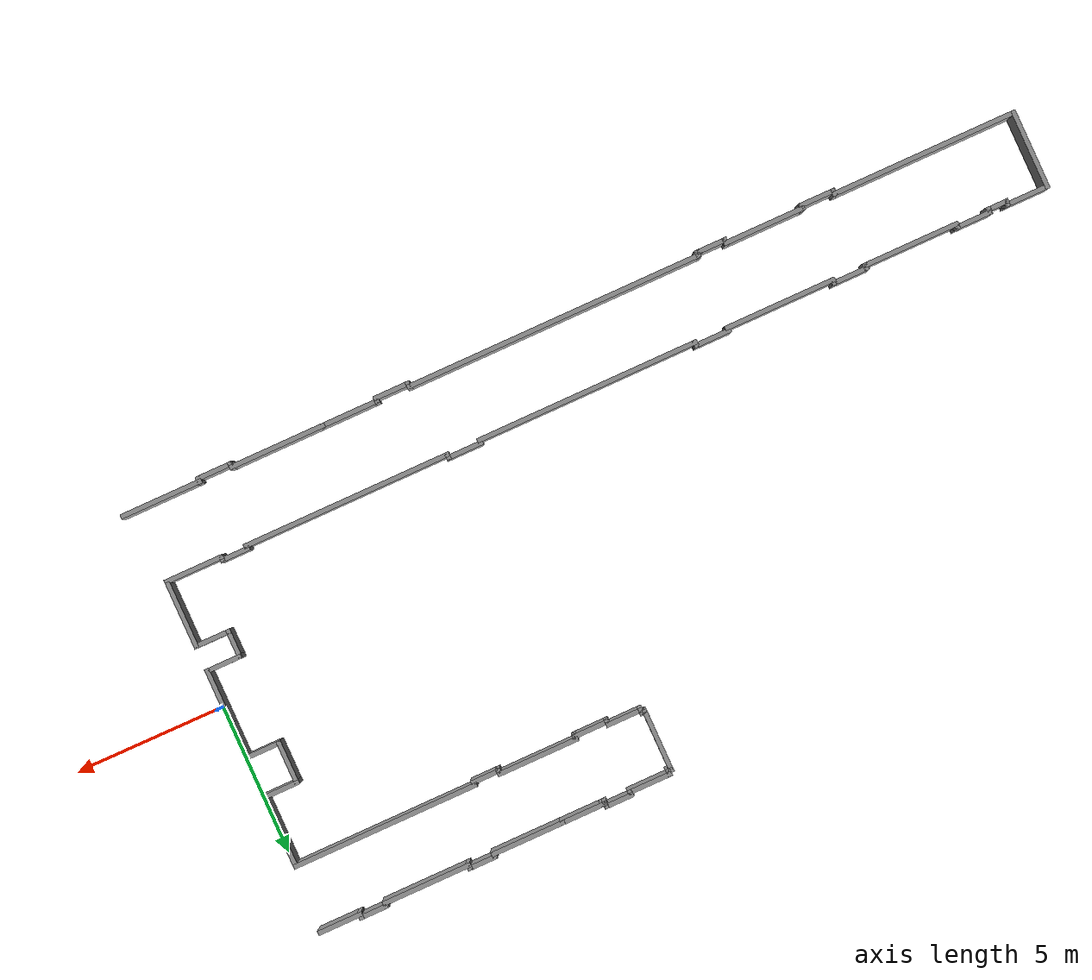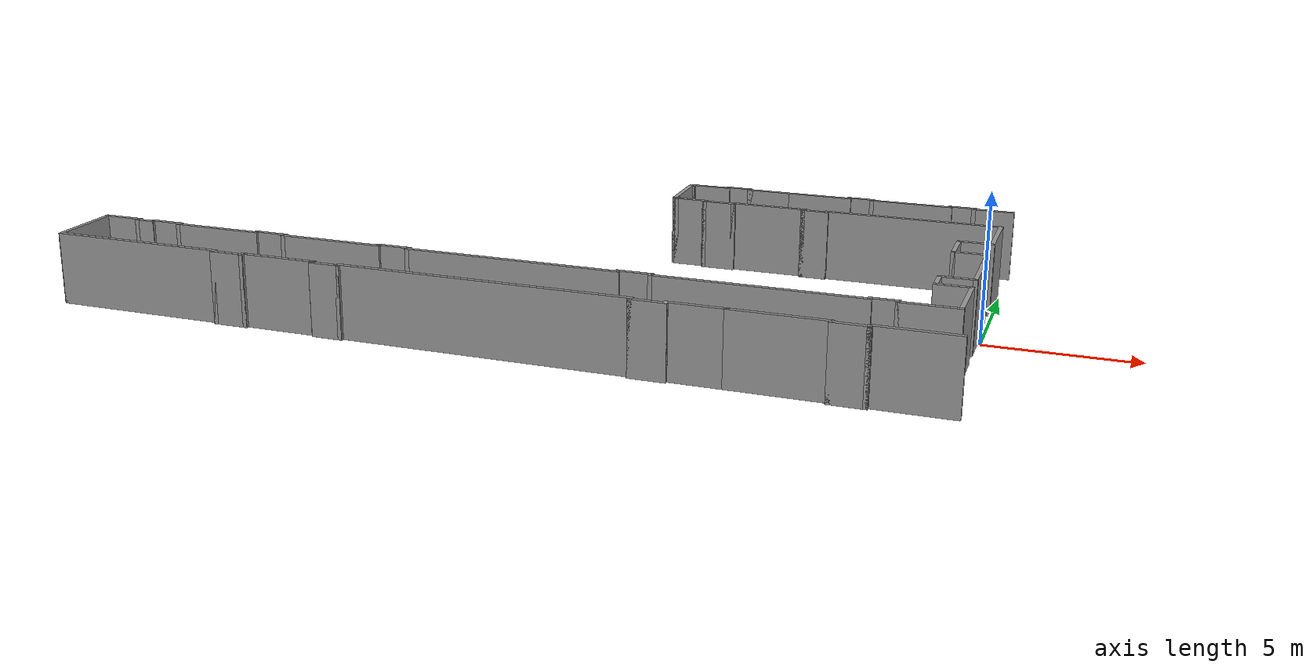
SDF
<sdf version="1.6">
 <model name="hallway">
  <pose>-0.039388 0.458321 0 0 -0 0</pose>
  <link name="Wall_10">
   <collision name="Wall_10_Collision">
    <geometry><box><size>0.25 0.15 2.5</size></box></geometry>
    <pose>0 0 1.25 0 -0 0</pose>
   </collision>
   <visual name="Wall_10_Visual">
    <pose>0 0 1.25 0 -0 0</pose>
    <geometry><box><size>0.25 0.15 2.5</size></box></geometry>
    <material>
     <script><uri>file://media/materials/scripts/gazebo.material</uri><name>Gazebo/Grey</name></script>
     <ambient>1 1 1 1</ambient>
    </material>
   </visual>
   <pose>-20.275 -7.2 0 0 0 -1.5708</pose>
  </link>
  <link name="Wall_100">
   <collision name="Wall_100_Collision">
    <geometry><box><size>3 0.15 2.5</size></box></geometry>
    <pose>0 0 1.25 0 -0 0</pose>
   </collision>
   <visual name="Wall_100_Visual">
    <pose>0 0 1.25 0 -0 0</pose>
    <geometry><box><size>3 0.15 2.5</size></box></geometry>
    <material>
     <script><uri>file://media/materials/scripts/gazebo.material</uri><name>Gazebo/Grey</name></script>
     <ambient>1 1 1 1</ambient>
    </material>
   </visual>
   <pose>-3.6 7.15 0 0 -0 3.14159</pose>
  </link>
  <link name="Wall_101">
   <collision name="Wall_101_Collision">
    <geometry><box><size>0.25 0.15 2.5</size></box></geometry>
    <pose>0 0 1.25 0 -0 0</pose>
   </collision>
   <visual name="Wall_101_Visual">
    <pose>0 0 1.25 0 -0 0</pose>
    <geometry><box><size>0.25 0.15 2.5</size></box></geometry>
    <material>
     <script><uri>file://media/materials/scripts/gazebo.material</uri><name>Gazebo/Grey</name></script>
     <ambient>1 1 1 1</ambient>
    </material>
   </visual>
   <pose>-5.025 7.2 0 0 -0 1.5708</pose>
  </link>
  <link name="Wall_102">
   <collision name="Wall_102_Collision">
    <geometry><box><size>1 0.15 2.5</size></box></geometry>
    <pose>0 0 1.25 0 -0 0</pose>
   </collision>
   <visual name="Wall_102_Visual">
    <pose>0 0 1.25 0 -0 0</pose>
    <geometry><box><size>1 0.15 2.5</size></box></geometry>
    <material>
     <script><uri>file://media/materials/scripts/gazebo.material</uri><name>Gazebo/Grey</name></script>
     <ambient>1 1 1 1</ambient>
    </material>
   </visual>
   <pose>-5.45 7.25 0 0 -0 3.14159</pose>
  </link>
  <link name="Wall_103">
   <collision name="Wall_103_Collision">
    <geometry><box><size>0.25 0.15 2.5</size></box></geometry>
    <pose>0 0 1.25 0 -0 0</pose>
   </collision>
   <visual name="Wall_103_Visual">
    <pose>0 0 1.25 0 -0 0</pose>
    <geometry><box><size>0.25 0.15 2.5</size></box></geometry>
    <material>
     <script><uri>file://media/materials/scripts/gazebo.material</uri><name>Gazebo/Grey</name></script>
     <ambient>1 1 1 1</ambient>
    </material>
   </visual>
   <pose>-5.875 7.2 0 0 0 -1.5708</pose>
  </link>
  <link name="Wall_104">
   <collision name="Wall_104_Collision">
    <geometry><box><size>2.5 0.15 2.5</size></box></geometry>
    <pose>0 0 1.25 0 -0 0</pose>
   </collision>
   <visual name="Wall_104_Visual">
    <pose>0 0 1.25 0 -0 0</pose>
    <geometry><box><size>2.5 0.15 2.5</size></box></geometry>
    <material>
     <script><uri>file://media/materials/scripts/gazebo.material</uri><name>Gazebo/Grey</name></script>
     <ambient>1 1 1 1</ambient>
    </material>
   </visual>
   <pose>-7.05 7.15 0 0 -0 3.14159</pose>
  </link>
  <link name="Wall_106">
   <collision name="Wall_106_Collision">
    <geometry><box><size>1.5 0.15 2.5</size></box></geometry>
    <pose>0 0 1.25 0 -0 0</pose>
   </collision>
   <visual name="Wall_106_Visual">
    <pose>0 0 1.25 0 -0 0</pose>
    <geometry><box><size>1.5 0.15 2.5</size></box></geometry>
    <material>
     <script><uri>file://media/materials/scripts/gazebo.material</uri><name>Gazebo/Grey</name></script>
     <ambient>1 1 1 1</ambient>
    </material>
   </visual>
   <pose>-8.9 7.15 0 0 -0 3.14159</pose>
  </link>
  <link name="Wall_107">
   <collision name="Wall_107_Collision">
    <geometry><box><size>0.25 0.15 2.5</size></box></geometry>
    <pose>0 0 1.25 0 -0 0</pose>
   </collision>
   <visual name="Wall_107_Visual">
    <pose>0 0 1.25 0 -0 0</pose>
    <geometry><box><size>0.25 0.15 2.5</size></box></geometry>
    <material>
     <script><uri>file://media/materials/scripts/gazebo.material</uri><name>Gazebo/Grey</name></script>
     <ambient>1 1 1 1</ambient>
    </material>
   </visual>
   <pose>-9.625 7.15 0 0 -0 3.14159</pose>
  </link>
  <link name="Wall_108">
   <collision name="Wall_108_Collision">
    <geometry><box><size>0.25 0.15 2.5</size></box></geometry>
    <pose>0 0 1.25 0 -0 0</pose>
   </collision>
   <visual name="Wall_108_Visual">
    <pose>0 0 1.25 0 -0 0</pose>
    <geometry><box><size>0.25 0.15 2.5</size></box></geometry>
    <material>
     <script><uri>file://media/materials/scripts/gazebo.material</uri><name>Gazebo/Grey</name></script>
     <ambient>1 1 1 1</ambient>
    </material>
   </visual>
   <pose>-9.675 7.2 0 0 -0 1.5708</pose>
  </link>
  <link name="Wall_109">
   <collision name="Wall_109_Collision">
    <geometry><box><size>1 0.15 2.5</size></box></geometry>
    <pose>0 0 1.25 0 -0 0</pose>
   </collision>
   <visual name="Wall_109_Visual">
    <pose>0 0 1.25 0 -0 0</pose>
    <geometry><box><size>1 0.15 2.5</size></box></geometry>
    <material>
     <script><uri>file://media/materials/scripts/gazebo.material</uri><name>Gazebo/Grey</name></script>
     <ambient>1 1 1 1</ambient>
    </material>
   </visual>
   <pose>-10.1 7.25 0 0 -0 3.14159</pose>
  </link>
  <link name="Wall_11">
   <collision name="Wall_11_Collision">
    <geometry><box><size>1 0.15 2.5</size></box></geometry>
    <pose>0 0 1.25 0 -0 0</pose>
   </collision>
   <visual name="Wall_11_Visual">
    <pose>0 0 1.25 0 -0 0</pose>
    <geometry><box><size>1 0.15 2.5</size></box></geometry>
    <material>
     <script><uri>file://media/materials/scripts/gazebo.material</uri><name>Gazebo/Grey</name></script>
     <ambient>1 1 1 1</ambient>
    </material>
   </visual>
   <pose>-19.85 -7.25 0 0 -0 0</pose>
  </link>
  <link name="Wall_110">
   <collision name="Wall_110_Collision">
    <geometry><box><size>0.25 0.15 2.5</size></box></geometry>
    <pose>0 0 1.25 0 -0 0</pose>
   </collision>
   <visual name="Wall_110_Visual">
    <pose>0 0 1.25 0 -0 0</pose>
    <geometry><box><size>0.25 0.15 2.5</size></box></geometry>
    <material>
     <script><uri>file://media/materials/scripts/gazebo.material</uri><name>Gazebo/Grey</name></script>
     <ambient>1 1 1 1</ambient>
    </material>
   </visual>
   <pose>-10.525 7.2 0 0 0 -1.5708</pose>
  </link>
  <link name="Wall_111">
   <collision name="Wall_111_Collision">
    <geometry><box><size>1.5 0.15 2.5</size></box></geometry>
    <pose>0 0 1.25 0 -0 0</pose>
   </collision>
   <visual name="Wall_111_Visual">
    <pose>0 0 1.25 0 -0 0</pose>
    <geometry><box><size>1.5 0.15 2.5</size></box></geometry>
    <material>
     <script><uri>file://media/materials/scripts/gazebo.material</uri><name>Gazebo/Grey</name></script>
     <ambient>1 1 1 1</ambient>
    </material>
   </visual>
   <pose>-11.2 7.15 0 0 -0 3.14159</pose>
  </link>
  <link name="Wall_112">
   <collision name="Wall_112_Collision">
    <geometry><box><size>0.25 0.15 2.5</size></box></geometry>
    <pose>0 0 1.25 0 -0 0</pose>
   </collision>
   <visual name="Wall_112_Visual">
    <pose>0 0 1.25 0 -0 0</pose>
    <geometry><box><size>0.25 0.15 2.5</size></box></geometry>
    <material>
     <script><uri>file://media/materials/scripts/gazebo.material</uri><name>Gazebo/Grey</name></script>
     <ambient>1 1 1 1</ambient>
    </material>
   </visual>
   <pose>-11.875 7.1 0 0 0 -1.5708</pose>
  </link>
  <link name="Wall_113">
   <collision name="Wall_113_Collision">
    <geometry><box><size>0.25 0.15 2.5</size></box></geometry>
    <pose>0 0 1.25 0 -0 0</pose>
   </collision>
   <visual name="Wall_113_Visual">
    <pose>0 0 1.25 0 -0 0</pose>
    <geometry><box><size>0.25 0.15 2.5</size></box></geometry>
    <material>
     <script><uri>file://media/materials/scripts/gazebo.material</uri><name>Gazebo/Grey</name></script>
     <ambient>1 1 1 1</ambient>
    </material>
   </visual>
   <pose>-11.925 7.05 0 0 -0 3.14159</pose>
  </link>
  <link name="Wall_114">
   <collision name="Wall_114_Collision">
    <geometry><box><size>2.03478 0.15 2.5</size></box></geometry>
    <pose>0 0 1.25 0 -0 0</pose>
   </collision>
   <visual name="Wall_114_Visual">
    <pose>0 0 1.25 0 -0 0</pose>
    <geometry><box><size>2.03478 0.15 2.5</size></box></geometry>
    <material>
     <script><uri>file://media/materials/scripts/gazebo.material</uri><name>Gazebo/Grey</name></script>
     <ambient>1 1 1 1</ambient>
    </material>
   </visual>
   <pose>-11.975 6.10761 0 0 0 -1.5708</pose>
  </link>
  <link name="Wall_115">
   <collision name="Wall_115_Collision">
    <geometry><box><size>0.15 0.15 2.5</size></box></geometry>
    <pose>0 0 1.25 0 -0 0</pose>
   </collision>
   <visual name="Wall_115_Visual">
    <pose>0 0 1.25 0 -0 0</pose>
    <geometry><box><size>0.15 0.15 2.5</size></box></geometry>
    <material>
     <script><uri>file://media/materials/scripts/gazebo.material</uri><name>Gazebo/Grey</name></script>
     <ambient>1 1 1 1</ambient>
    </material>
   </visual>
   <pose>-11.975 5.16522 0 0 -0 0</pose>
  </link>
  <link name="Wall_12">
   <collision name="Wall_12_Collision">
    <geometry><box><size>0.25 0.15 2.5</size></box></geometry>
    <pose>0 0 1.25 0 -0 0</pose>
   </collision>
   <visual name="Wall_12_Visual">
    <pose>0 0 1.25 0 -0 0</pose>
    <geometry><box><size>0.25 0.15 2.5</size></box></geometry>
    <material>
     <script><uri>file://media/materials/scripts/gazebo.material</uri><name>Gazebo/Grey</name></script>
     <ambient>1 1 1 1</ambient>
    </material>
   </visual>
   <pose>-19.375 -7.25 0 0 -0 0</pose>
  </link>
  <link name="Wall_128">
   <collision name="Wall_128_Collision">
    <geometry><box><size>0.25 0.15 2.5</size></box></geometry>
    <pose>0 0 1.25 0 -0 0</pose>
   </collision>
   <visual name="Wall_128_Visual">
    <pose>0 0 1.25 0 -0 0</pose>
    <geometry><box><size>0.25 0.15 2.5</size></box></geometry>
    <material>
     <script><uri>file://media/materials/scripts/gazebo.material</uri><name>Gazebo/Grey</name></script>
     <ambient>1 1 1 1</ambient>
    </material>
   </visual>
   <pose>-11.975 5.11522 0 0 0 -1.5708</pose>
  </link>
  <link name="Wall_129">
   <collision name="Wall_129_Collision">
    <geometry><box><size>0.25 0.15 2.5</size></box></geometry>
    <pose>0 0 1.25 0 -0 0</pose>
   </collision>
   <visual name="Wall_129_Visual">
    <pose>0 0 1.25 0 -0 0</pose>
    <geometry><box><size>0.25 0.15 2.5</size></box></geometry>
    <material>
     <script><uri>file://media/materials/scripts/gazebo.material</uri><name>Gazebo/Grey</name></script>
     <ambient>1 1 1 1</ambient>
    </material>
   </visual>
   <pose>-11.925 5.06522 0 0 -0 0</pose>
  </link>
  <link name="Wall_13">
   <collision name="Wall_13_Collision">
    <geometry><box><size>0.25 0.15 2.5</size></box></geometry>
    <pose>0 0 1.25 0 -0 0</pose>
   </collision>
   <visual name="Wall_13_Visual">
    <pose>0 0 1.25 0 -0 0</pose>
    <geometry><box><size>0.25 0.15 2.5</size></box></geometry>
    <material>
     <script><uri>file://media/materials/scripts/gazebo.material</uri><name>Gazebo/Grey</name></script>
     <ambient>1 1 1 1</ambient>
    </material>
   </visual>
   <pose>-19.325 -7.2 0 0 -0 1.5708</pose>
  </link>
  <link name="Wall_130">
   <collision name="Wall_130_Collision">
    <geometry><box><size>0.25 0.15 2.5</size></box></geometry>
    <pose>0 0 1.25 0 -0 0</pose>
   </collision>
   <visual name="Wall_130_Visual">
    <pose>0 0 1.25 0 -0 0</pose>
    <geometry><box><size>0.25 0.15 2.5</size></box></geometry>
    <material>
     <script><uri>file://media/materials/scripts/gazebo.material</uri><name>Gazebo/Grey</name></script>
     <ambient>1 1 1 1</ambient>
    </material>
   </visual>
   <pose>-11.875 5.01522 0 0 0 -1.5708</pose>
  </link>
  <link name="Wall_131">
   <collision name="Wall_131_Collision">
    <geometry><box><size>1.25 0.15 2.5</size></box></geometry>
    <pose>0 0 1.25 0 -0 0</pose>
   </collision>
   <visual name="Wall_131_Visual">
    <pose>0 0 1.25 0 -0 0</pose>
    <geometry><box><size>1.25 0.15 2.5</size></box></geometry>
    <material>
     <script><uri>file://media/materials/scripts/gazebo.material</uri><name>Gazebo/Grey</name></script>
     <ambient>1 1 1 1</ambient>
    </material>
   </visual>
   <pose>-11.325 4.96522 0 0 -0 0</pose>
  </link>
  <link name="Wall_132">
   <collision name="Wall_132_Collision">
    <geometry><box><size>0.25 0.15 2.5</size></box></geometry>
    <pose>0 0 1.25 0 -0 0</pose>
   </collision>
   <visual name="Wall_132_Visual">
    <pose>0 0 1.25 0 -0 0</pose>
    <geometry><box><size>0.25 0.15 2.5</size></box></geometry>
    <material>
     <script><uri>file://media/materials/scripts/gazebo.material</uri><name>Gazebo/Grey</name></script>
     <ambient>1 1 1 1</ambient>
    </material>
   </visual>
   <pose>-10.775 4.91522 0 0 0 -1.5708</pose>
  </link>
  <link name="Wall_133">
   <collision name="Wall_133_Collision">
    <geometry><box><size>1.25 0.15 2.5</size></box></geometry>
    <pose>0 0 1.25 0 -0 0</pose>
   </collision>
   <visual name="Wall_133_Visual">
    <pose>0 0 1.25 0 -0 0</pose>
    <geometry><box><size>1.25 0.15 2.5</size></box></geometry>
    <material>
     <script><uri>file://media/materials/scripts/gazebo.material</uri><name>Gazebo/Grey</name></script>
     <ambient>1 1 1 1</ambient>
    </material>
   </visual>
   <pose>-10.225 4.86522 0 0 -0 0</pose>
  </link>
  <link name="Wall_134">
   <collision name="Wall_134_Collision">
    <geometry><box><size>0.25 0.15 2.5</size></box></geometry>
    <pose>0 0 1.25 0 -0 0</pose>
   </collision>
   <visual name="Wall_134_Visual">
    <pose>0 0 1.25 0 -0 0</pose>
    <geometry><box><size>0.25 0.15 2.5</size></box></geometry>
    <material>
     <script><uri>file://media/materials/scripts/gazebo.material</uri><name>Gazebo/Grey</name></script>
     <ambient>1 1 1 1</ambient>
    </material>
   </visual>
   <pose>-9.675 4.91522 0 0 -0 1.5708</pose>
  </link>
  <link name="Wall_135">
   <collision name="Wall_135_Collision">
    <geometry><box><size>2.75 0.15 2.5</size></box></geometry>
    <pose>0 0 1.25 0 -0 0</pose>
   </collision>
   <visual name="Wall_135_Visual">
    <pose>0 0 1.25 0 -0 0</pose>
    <geometry><box><size>2.75 0.15 2.5</size></box></geometry>
    <material>
     <script><uri>file://media/materials/scripts/gazebo.material</uri><name>Gazebo/Grey</name></script>
     <ambient>1 1 1 1</ambient>
    </material>
   </visual>
   <pose>-8.375 4.96522 0 0 -0 0</pose>
  </link>
  <link name="Wall_136">
   <collision name="Wall_136_Collision">
    <geometry><box><size>0.25 0.15 2.5</size></box></geometry>
    <pose>0 0 1.25 0 -0 0</pose>
   </collision>
   <visual name="Wall_136_Visual">
    <pose>0 0 1.25 0 -0 0</pose>
    <geometry><box><size>0.25 0.15 2.5</size></box></geometry>
    <material>
     <script><uri>file://media/materials/scripts/gazebo.material</uri><name>Gazebo/Grey</name></script>
     <ambient>1 1 1 1</ambient>
    </material>
   </visual>
   <pose>-7.075 4.91522 0 0 0 -1.5708</pose>
  </link>
  <link name="Wall_137">
   <collision name="Wall_137_Collision">
    <geometry><box><size>1 0.15 2.5</size></box></geometry>
    <pose>0 0 1.25 0 -0 0</pose>
   </collision>
   <visual name="Wall_137_Visual">
    <pose>0 0 1.25 0 -0 0</pose>
    <geometry><box><size>1 0.15 2.5</size></box></geometry>
    <material>
     <script><uri>file://media/materials/scripts/gazebo.material</uri><name>Gazebo/Grey</name></script>
     <ambient>1 1 1 1</ambient>
    </material>
   </visual>
   <pose>-6.65 4.86522 0 0 -0 0</pose>
  </link>
  <link name="Wall_138">
   <collision name="Wall_138_Collision">
    <geometry><box><size>0.25 0.15 2.5</size></box></geometry>
    <pose>0 0 1.25 0 -0 0</pose>
   </collision>
   <visual name="Wall_138_Visual">
    <pose>0 0 1.25 0 -0 0</pose>
    <geometry><box><size>0.25 0.15 2.5</size></box></geometry>
    <material>
     <script><uri>file://media/materials/scripts/gazebo.material</uri><name>Gazebo/Grey</name></script>
     <ambient>1 1 1 1</ambient>
    </material>
   </visual>
   <pose>-6.225 4.91522 0 0 -0 1.5708</pose>
  </link>
  <link name="Wall_139">
   <collision name="Wall_139_Collision">
    <geometry><box><size>6.25 0.15 2.5</size></box></geometry>
    <pose>0 0 1.25 0 -0 0</pose>
   </collision>
   <visual name="Wall_139_Visual">
    <pose>0 0 1.25 0 -0 0</pose>
    <geometry><box><size>6.25 0.15 2.5</size></box></geometry>
    <material>
     <script><uri>file://media/materials/scripts/gazebo.material</uri><name>Gazebo/Grey</name></script>
     <ambient>1 1 1 1</ambient>
    </material>
   </visual>
   <pose>-3.175 4.96522 0 0 -0 0</pose>
  </link>
  <link name="Wall_14">
   <collision name="Wall_14_Collision">
    <geometry><box><size>10 0.15 2.5</size></box></geometry>
    <pose>0 0 1.25 0 -0 0</pose>
   </collision>
   <visual name="Wall_14_Visual">
    <pose>0 0 1.25 0 -0 0</pose>
    <geometry><box><size>10 0.15 2.5</size></box></geometry>
    <material>
     <script><uri>file://media/materials/scripts/gazebo.material</uri><name>Gazebo/Grey</name></script>
     <ambient>1 1 1 1</ambient>
    </material>
   </visual>
   <pose>-14.4 -7.15 0 0 -0 0</pose>
  </link>
  <link name="Wall_140">
   <collision name="Wall_140_Collision">
    <geometry><box><size>2.5 0.15 2.5</size></box></geometry>
    <pose>0 0 1.25 0 -0 0</pose>
   </collision>
   <visual name="Wall_140_Visual">
    <pose>0 0 1.25 0 -0 0</pose>
    <geometry><box><size>2.5 0.15 2.5</size></box></geometry>
    <material>
     <script><uri>file://media/materials/scripts/gazebo.material</uri><name>Gazebo/Grey</name></script>
     <ambient>1 1 1 1</ambient>
    </material>
   </visual>
   <pose>-0.125 3.79022 0 0 0 -1.5708</pose>
  </link>
  <link name="Wall_141">
   <collision name="Wall_141_Collision">
    <geometry><box><size>1.25 0.15 2.5</size></box></geometry>
    <pose>0 0 1.25 0 -0 0</pose>
   </collision>
   <visual name="Wall_141_Visual">
    <pose>0 0 1.25 0 -0 0</pose>
    <geometry><box><size>1.25 0.15 2.5</size></box></geometry>
    <material>
     <script><uri>file://media/materials/scripts/gazebo.material</uri><name>Gazebo/Grey</name></script>
     <ambient>1 1 1 1</ambient>
    </material>
   </visual>
   <pose>-0.675 2.61522 0 0 -0 3.14159</pose>
  </link>
  <link name="Wall_142">
   <collision name="Wall_142_Collision">
    <geometry><box><size>1.5 0.15 2.5</size></box></geometry>
    <pose>0 0 1.25 0 -0 0</pose>
   </collision>
   <visual name="Wall_142_Visual">
    <pose>0 0 1.25 0 -0 0</pose>
    <geometry><box><size>1.5 0.15 2.5</size></box></geometry>
    <material>
     <script><uri>file://media/materials/scripts/gazebo.material</uri><name>Gazebo/Grey</name></script>
     <ambient>1 1 1 1</ambient>
    </material>
   </visual>
   <pose>-1.225 1.94022 0 0 0 -1.5708</pose>
  </link>
  <link name="Wall_143">
   <collision name="Wall_143_Collision">
    <geometry><box><size>1.25 0.15 2.5</size></box></geometry>
    <pose>0 0 1.25 0 -0 0</pose>
   </collision>
   <visual name="Wall_143_Visual">
    <pose>0 0 1.25 0 -0 0</pose>
    <geometry><box><size>1.25 0.15 2.5</size></box></geometry>
    <material>
     <script><uri>file://media/materials/scripts/gazebo.material</uri><name>Gazebo/Grey</name></script>
     <ambient>1 1 1 1</ambient>
    </material>
   </visual>
   <pose>-0.675 1.26522 0 0 -0 0</pose>
  </link>
  <link name="Wall_144">
   <collision name="Wall_144_Collision">
    <geometry><box><size>1.25 0.15 2.5</size></box></geometry>
    <pose>0 0 1.25 0 -0 0</pose>
   </collision>
   <visual name="Wall_144_Visual">
    <pose>0 0 1.25 0 -0 0</pose>
    <geometry><box><size>1.25 0.15 2.5</size></box></geometry>
    <material>
     <script><uri>file://media/materials/scripts/gazebo.material</uri><name>Gazebo/Grey</name></script>
     <ambient>1 1 1 1</ambient>
    </material>
   </visual>
   <pose>-0.125 0.715217 0 0 0 -1.5708</pose>
  </link>
  <link name="Wall_146">
   <collision name="Wall_146_Collision">
    <geometry><box><size>2 0.15 2.5</size></box></geometry>
    <pose>0 0 1.25 0 -0 0</pose>
   </collision>
   <visual name="Wall_146_Visual">
    <pose>0 0 1.25 0 -0 0</pose>
    <geometry><box><size>2 0.15 2.5</size></box></geometry>
    <material>
     <script><uri>file://media/materials/scripts/gazebo.material</uri><name>Gazebo/Grey</name></script>
     <ambient>1 1 1 1</ambient>
    </material>
   </visual>
   <pose>-0.125 -0.759783 0 0 0 -1.5708</pose>
  </link>
  <link name="Wall_147">
   <collision name="Wall_147_Collision">
    <geometry><box><size>1.25 0.15 2.5</size></box></geometry>
    <pose>0 0 1.25 0 -0 0</pose>
   </collision>
   <visual name="Wall_147_Visual">
    <pose>0 0 1.25 0 -0 0</pose>
    <geometry><box><size>1.25 0.15 2.5</size></box></geometry>
    <material>
     <script><uri>file://media/materials/scripts/gazebo.material</uri><name>Gazebo/Grey</name></script>
     <ambient>1 1 1 1</ambient>
    </material>
   </visual>
   <pose>-0.675 -1.68478 0 0 -0 3.14159</pose>
  </link>
  <link name="Wall_148">
   <collision name="Wall_148_Collision">
    <geometry><box><size>1 0.15 2.5</size></box></geometry>
    <pose>0 0 1.25 0 -0 0</pose>
   </collision>
   <visual name="Wall_148_Visual">
    <pose>0 0 1.25 0 -0 0</pose>
    <geometry><box><size>1 0.15 2.5</size></box></geometry>
    <material>
     <script><uri>file://media/materials/scripts/gazebo.material</uri><name>Gazebo/Grey</name></script>
     <ambient>1 1 1 1</ambient>
    </material>
   </visual>
   <pose>-1.225 -2.10978 0 0 0 -1.5708</pose>
  </link>
  <link name="Wall_15">
   <collision name="Wall_15_Collision">
    <geometry><box><size>0.25 0.15 2.5</size></box></geometry>
    <pose>0 0 1.25 0 -0 0</pose>
   </collision>
   <visual name="Wall_15_Visual">
    <pose>0 0 1.25 0 -0 0</pose>
    <geometry><box><size>0.25 0.15 2.5</size></box></geometry>
    <material>
     <script><uri>file://media/materials/scripts/gazebo.material</uri><name>Gazebo/Grey</name></script>
     <ambient>1 1 1 1</ambient>
    </material>
   </visual>
   <pose>-9.475 -7.2 0 0 0 -1.5708</pose>
  </link>
  <link name="Wall_156">
   <collision name="Wall_156_Collision">
    <geometry><box><size>1.25 0.15 2.5</size></box></geometry>
    <pose>0 0 1.25 0 -0 0</pose>
   </collision>
   <visual name="Wall_156_Visual">
    <pose>0 0 1.25 0 -0 0</pose>
    <geometry><box><size>1.25 0.15 2.5</size></box></geometry>
    <material>
     <script><uri>file://media/materials/scripts/gazebo.material</uri><name>Gazebo/Grey</name></script>
     <ambient>1 1 1 1</ambient>
    </material>
   </visual>
   <pose>-0.675 -2.53478 0 0 -0 0</pose>
  </link>
  <link name="Wall_157">
   <collision name="Wall_157_Collision">
    <geometry><box><size>2.25 0.15 2.5</size></box></geometry>
    <pose>0 0 1.25 0 -0 0</pose>
   </collision>
   <visual name="Wall_157_Visual">
    <pose>0 0 1.25 0 -0 0</pose>
    <geometry><box><size>2.25 0.15 2.5</size></box></geometry>
    <material>
     <script><uri>file://media/materials/scripts/gazebo.material</uri><name>Gazebo/Grey</name></script>
     <ambient>1 1 1 1</ambient>
    </material>
   </visual>
   <pose>-0.125 -3.58478 0 0 0 -1.5708</pose>
  </link>
  <link name="Wall_159">
   <collision name="Wall_159_Collision">
    <geometry><box><size>2 0.15 2.5</size></box></geometry>
    <pose>0 0 1.25 0 -0 0</pose>
   </collision>
   <visual name="Wall_159_Visual">
    <pose>0 0 1.25 0 -0 0</pose>
    <geometry><box><size>2 0.15 2.5</size></box></geometry>
    <material>
     <script><uri>file://media/materials/scripts/gazebo.material</uri><name>Gazebo/Grey</name></script>
     <ambient>1 1 1 1</ambient>
    </material>
   </visual>
   <pose>-1.05 -4.73478 0 0 -0 3.14159</pose>
  </link>
  <link name="Wall_16">
   <collision name="Wall_16_Collision">
    <geometry><box><size>1.25 0.15 2.5</size></box></geometry>
    <pose>0 0 1.25 0 -0 0</pose>
   </collision>
   <visual name="Wall_16_Visual">
    <pose>0 0 1.25 0 -0 0</pose>
    <geometry><box><size>1.25 0.15 2.5</size></box></geometry>
    <material>
     <script><uri>file://media/materials/scripts/gazebo.material</uri><name>Gazebo/Grey</name></script>
     <ambient>1 1 1 1</ambient>
    </material>
   </visual>
   <pose>-8.925 -7.25 0 0 -0 0</pose>
  </link>
  <link name="Wall_160">
   <collision name="Wall_160_Collision">
    <geometry><box><size>0.25 0.15 2.5</size></box></geometry>
    <pose>0 0 1.25 0 -0 0</pose>
   </collision>
   <visual name="Wall_160_Visual">
    <pose>0 0 1.25 0 -0 0</pose>
    <geometry><box><size>0.25 0.15 2.5</size></box></geometry>
    <material>
     <script><uri>file://media/materials/scripts/gazebo.material</uri><name>Gazebo/Grey</name></script>
     <ambient>1 1 1 1</ambient>
    </material>
   </visual>
   <pose>-1.975 -4.68478 0 0 -0 1.5708</pose>
  </link>
  <link name="Wall_161">
   <collision name="Wall_161_Collision">
    <geometry><box><size>1 0.15 2.5</size></box></geometry>
    <pose>0 0 1.25 0 -0 0</pose>
   </collision>
   <visual name="Wall_161_Visual">
    <pose>0 0 1.25 0 -0 0</pose>
    <geometry><box><size>1 0.15 2.5</size></box></geometry>
    <material>
     <script><uri>file://media/materials/scripts/gazebo.material</uri><name>Gazebo/Grey</name></script>
     <ambient>1 1 1 1</ambient>
    </material>
   </visual>
   <pose>-2.4 -4.63478 0 0 -0 3.14159</pose>
  </link>
  <link name="Wall_162">
   <collision name="Wall_162_Collision">
    <geometry><box><size>0.25 0.15 2.5</size></box></geometry>
    <pose>0 0 1.25 0 -0 0</pose>
   </collision>
   <visual name="Wall_162_Visual">
    <pose>0 0 1.25 0 -0 0</pose>
    <geometry><box><size>0.25 0.15 2.5</size></box></geometry>
    <material>
     <script><uri>file://media/materials/scripts/gazebo.material</uri><name>Gazebo/Grey</name></script>
     <ambient>1 1 1 1</ambient>
    </material>
   </visual>
   <pose>-2.825 -4.68478 0 0 0 -1.5708</pose>
  </link>
  <link name="Wall_163">
   <collision name="Wall_163_Collision">
    <geometry><box><size>7 0.15 2.5</size></box></geometry>
    <pose>0 0 1.25 0 -0 0</pose>
   </collision>
   <visual name="Wall_163_Visual">
    <pose>0 0 1.25 0 -0 0</pose>
    <geometry><box><size>7 0.15 2.5</size></box></geometry>
    <material>
     <script><uri>file://media/materials/scripts/gazebo.material</uri><name>Gazebo/Grey</name></script>
     <ambient>1 1 1 1</ambient>
    </material>
   </visual>
   <pose>-6.25 -4.73478 0 0 -0 3.14159</pose>
  </link>
  <link name="Wall_164">
   <collision name="Wall_164_Collision">
    <geometry><box><size>0.25 0.15 2.5</size></box></geometry>
    <pose>0 0 1.25 0 -0 0</pose>
   </collision>
   <visual name="Wall_164_Visual">
    <pose>0 0 1.25 0 -0 0</pose>
    <geometry><box><size>0.25 0.15 2.5</size></box></geometry>
    <material>
     <script><uri>file://media/materials/scripts/gazebo.material</uri><name>Gazebo/Grey</name></script>
     <ambient>1 1 1 1</ambient>
    </material>
   </visual>
   <pose>-9.675 -4.68478 0 0 -0 1.5708</pose>
  </link>
  <link name="Wall_165">
   <collision name="Wall_165_Collision">
    <geometry><box><size>1.25 0.15 2.5</size></box></geometry>
    <pose>0 0 1.25 0 -0 0</pose>
   </collision>
   <visual name="Wall_165_Visual">
    <pose>0 0 1.25 0 -0 0</pose>
    <geometry><box><size>1.25 0.15 2.5</size></box></geometry>
    <material>
     <script><uri>file://media/materials/scripts/gazebo.material</uri><name>Gazebo/Grey</name></script>
     <ambient>1 1 1 1</ambient>
    </material>
   </visual>
   <pose>-10.225 -4.63478 0 0 -0 3.14159</pose>
  </link>
  <link name="Wall_166">
   <collision name="Wall_166_Collision">
    <geometry><box><size>0.25 0.15 2.5</size></box></geometry>
    <pose>0 0 1.25 0 -0 0</pose>
   </collision>
   <visual name="Wall_166_Visual">
    <pose>0 0 1.25 0 -0 0</pose>
    <geometry><box><size>0.25 0.15 2.5</size></box></geometry>
    <material>
     <script><uri>file://media/materials/scripts/gazebo.material</uri><name>Gazebo/Grey</name></script>
     <ambient>1 1 1 1</ambient>
    </material>
   </visual>
   <pose>-10.775 -4.68478 0 0 0 -1.5708</pose>
  </link>
  <link name="Wall_167">
   <collision name="Wall_167_Collision">
    <geometry><box><size>7.5 0.15 2.5</size></box></geometry>
    <pose>0 0 1.25 0 -0 0</pose>
   </collision>
   <visual name="Wall_167_Visual">
    <pose>0 0 1.25 0 -0 0</pose>
    <geometry><box><size>7.5 0.15 2.5</size></box></geometry>
    <material>
     <script><uri>file://media/materials/scripts/gazebo.material</uri><name>Gazebo/Grey</name></script>
     <ambient>1 1 1 1</ambient>
    </material>
   </visual>
   <pose>-14.45 -4.73478 0 0 -0 3.14159</pose>
  </link>
  <link name="Wall_168">
   <collision name="Wall_168_Collision">
    <geometry><box><size>0.25 0.15 2.5</size></box></geometry>
    <pose>0 0 1.25 0 -0 0</pose>
   </collision>
   <visual name="Wall_168_Visual">
    <pose>0 0 1.25 0 -0 0</pose>
    <geometry><box><size>0.25 0.15 2.5</size></box></geometry>
    <material>
     <script><uri>file://media/materials/scripts/gazebo.material</uri><name>Gazebo/Grey</name></script>
     <ambient>1 1 1 1</ambient>
    </material>
   </visual>
   <pose>-18.125 -4.68478 0 0 -0 1.5708</pose>
  </link>
  <link name="Wall_169">
   <collision name="Wall_169_Collision">
    <geometry><box><size>1.25 0.15 2.5</size></box></geometry>
    <pose>0 0 1.25 0 -0 0</pose>
   </collision>
   <visual name="Wall_169_Visual">
    <pose>0 0 1.25 0 -0 0</pose>
    <geometry><box><size>1.25 0.15 2.5</size></box></geometry>
    <material>
     <script><uri>file://media/materials/scripts/gazebo.material</uri><name>Gazebo/Grey</name></script>
     <ambient>1 1 1 1</ambient>
    </material>
   </visual>
   <pose>-18.675 -4.63478 0 0 -0 3.14159</pose>
  </link>
  <link name="Wall_17">
   <collision name="Wall_17_Collision">
    <geometry><box><size>0.25 0.15 2.5</size></box></geometry>
    <pose>0 0 1.25 0 -0 0</pose>
   </collision>
   <visual name="Wall_17_Visual">
    <pose>0 0 1.25 0 -0 0</pose>
    <geometry><box><size>0.25 0.15 2.5</size></box></geometry>
    <material>
     <script><uri>file://media/materials/scripts/gazebo.material</uri><name>Gazebo/Grey</name></script>
     <ambient>1 1 1 1</ambient>
    </material>
   </visual>
   <pose>-8.375 -7.2 0 0 -0 1.5708</pose>
  </link>
  <link name="Wall_170">
   <collision name="Wall_170_Collision">
    <geometry><box><size>0.25 0.15 2.5</size></box></geometry>
    <pose>0 0 1.25 0 -0 0</pose>
   </collision>
   <visual name="Wall_170_Visual">
    <pose>0 0 1.25 0 -0 0</pose>
    <geometry><box><size>0.25 0.15 2.5</size></box></geometry>
    <material>
     <script><uri>file://media/materials/scripts/gazebo.material</uri><name>Gazebo/Grey</name></script>
     <ambient>1 1 1 1</ambient>
    </material>
   </visual>
   <pose>-19.225 -4.68478 0 0 0 -1.5708</pose>
  </link>
  <link name="Wall_171">
   <collision name="Wall_171_Collision">
    <geometry><box><size>3.75 0.15 2.5</size></box></geometry>
    <pose>0 0 1.25 0 -0 0</pose>
   </collision>
   <visual name="Wall_171_Visual">
    <pose>0 0 1.25 0 -0 0</pose>
    <geometry><box><size>3.75 0.15 2.5</size></box></geometry>
    <material>
     <script><uri>file://media/materials/scripts/gazebo.material</uri><name>Gazebo/Grey</name></script>
     <ambient>1 1 1 1</ambient>
    </material>
   </visual>
   <pose>-21.025 -4.73478 0 0 -0 3.14159</pose>
  </link>
  <link name="Wall_172">
   <collision name="Wall_172_Collision">
    <geometry><box><size>0.25 0.15 2.5</size></box></geometry>
    <pose>0 0 1.25 0 -0 0</pose>
   </collision>
   <visual name="Wall_172_Visual">
    <pose>0 0 1.25 0 -0 0</pose>
    <geometry><box><size>0.25 0.15 2.5</size></box></geometry>
    <material>
     <script><uri>file://media/materials/scripts/gazebo.material</uri><name>Gazebo/Grey</name></script>
     <ambient>1 1 1 1</ambient>
    </material>
   </visual>
   <pose>-22.825 -4.68478 0 0 -0 1.5708</pose>
  </link>
  <link name="Wall_173">
   <collision name="Wall_173_Collision">
    <geometry><box><size>1.25 0.15 2.5</size></box></geometry>
    <pose>0 0 1.25 0 -0 0</pose>
   </collision>
   <visual name="Wall_173_Visual">
    <pose>0 0 1.25 0 -0 0</pose>
    <geometry><box><size>1.25 0.15 2.5</size></box></geometry>
    <material>
     <script><uri>file://media/materials/scripts/gazebo.material</uri><name>Gazebo/Grey</name></script>
     <ambient>1 1 1 1</ambient>
    </material>
   </visual>
   <pose>-23.375 -4.63478 0 0 -0 3.14159</pose>
  </link>
  <link name="Wall_174">
   <collision name="Wall_174_Collision">
    <geometry><box><size>0.25 0.15 2.5</size></box></geometry>
    <pose>0 0 1.25 0 -0 0</pose>
   </collision>
   <visual name="Wall_174_Visual">
    <pose>0 0 1.25 0 -0 0</pose>
    <geometry><box><size>0.25 0.15 2.5</size></box></geometry>
    <material>
     <script><uri>file://media/materials/scripts/gazebo.material</uri><name>Gazebo/Grey</name></script>
     <ambient>1 1 1 1</ambient>
    </material>
   </visual>
   <pose>-23.925 -4.68478 0 0 0 -1.5708</pose>
  </link>
  <link name="Wall_175">
   <collision name="Wall_175_Collision">
    <geometry><box><size>3.25 0.15 2.5</size></box></geometry>
    <pose>0 0 1.25 0 -0 0</pose>
   </collision>
   <visual name="Wall_175_Visual">
    <pose>0 0 1.25 0 -0 0</pose>
    <geometry><box><size>3.25 0.15 2.5</size></box></geometry>
    <material>
     <script><uri>file://media/materials/scripts/gazebo.material</uri><name>Gazebo/Grey</name></script>
     <ambient>1 1 1 1</ambient>
    </material>
   </visual>
   <pose>-25.475 -4.73478 0 0 -0 3.14159</pose>
  </link>
  <link name="Wall_176">
   <collision name="Wall_176_Collision">
    <geometry><box><size>0.25 0.15 2.5</size></box></geometry>
    <pose>0 0 1.25 0 -0 0</pose>
   </collision>
   <visual name="Wall_176_Visual">
    <pose>0 0 1.25 0 -0 0</pose>
    <geometry><box><size>0.25 0.15 2.5</size></box></geometry>
    <material>
     <script><uri>file://media/materials/scripts/gazebo.material</uri><name>Gazebo/Grey</name></script>
     <ambient>1 1 1 1</ambient>
    </material>
   </visual>
   <pose>-27.025 -4.68478 0 0 -0 1.5708</pose>
  </link>
  <link name="Wall_177">
   <collision name="Wall_177_Collision">
    <geometry><box><size>1.25 0.15 2.5</size></box></geometry>
    <pose>0 0 1.25 0 -0 0</pose>
   </collision>
   <visual name="Wall_177_Visual">
    <pose>0 0 1.25 0 -0 0</pose>
    <geometry><box><size>1.25 0.15 2.5</size></box></geometry>
    <material>
     <script><uri>file://media/materials/scripts/gazebo.material</uri><name>Gazebo/Grey</name></script>
     <ambient>1 1 1 1</ambient>
    </material>
   </visual>
   <pose>-27.575 -4.63478 0 0 -0 3.14159</pose>
  </link>
  <link name="Wall_178">
   <collision name="Wall_178_Collision">
    <geometry><box><size>0.25 0.15 2.5</size></box></geometry>
    <pose>0 0 1.25 0 -0 0</pose>
   </collision>
   <visual name="Wall_178_Visual">
    <pose>0 0 1.25 0 -0 0</pose>
    <geometry><box><size>0.25 0.15 2.5</size></box></geometry>
    <material>
     <script><uri>file://media/materials/scripts/gazebo.material</uri><name>Gazebo/Grey</name></script>
     <ambient>1 1 1 1</ambient>
    </material>
   </visual>
   <pose>-28.125 -4.68478 0 0 0 -1.5708</pose>
  </link>
  <link name="Wall_179">
   <collision name="Wall_179_Collision">
    <geometry><box><size>0.75 0.15 2.5</size></box></geometry>
    <pose>0 0 1.25 0 -0 0</pose>
   </collision>
   <visual name="Wall_179_Visual">
    <pose>0 0 1.25 0 -0 0</pose>
    <geometry><box><size>0.75 0.15 2.5</size></box></geometry>
    <material>
     <script><uri>file://media/materials/scripts/gazebo.material</uri><name>Gazebo/Grey</name></script>
     <ambient>1 1 1 1</ambient>
    </material>
   </visual>
   <pose>-28.425 -4.73478 0 0 -0 3.14159</pose>
  </link>
  <link name="Wall_18">
   <collision name="Wall_18_Collision">
    <geometry><box><size>2 0.15 2.5</size></box></geometry>
    <pose>0 0 1.25 0 -0 0</pose>
   </collision>
   <visual name="Wall_18_Visual">
    <pose>0 0 1.25 0 -0 0</pose>
    <geometry><box><size>2 0.15 2.5</size></box></geometry>
    <material>
     <script><uri>file://media/materials/scripts/gazebo.material</uri><name>Gazebo/Grey</name></script>
     <ambient>1 1 1 1</ambient>
    </material>
   </visual>
   <pose>-7.45 -7.15 0 0 -0 0</pose>
  </link>
  <link name="Wall_180">
   <collision name="Wall_180_Collision">
    <geometry><box><size>0.25 0.15 2.5</size></box></geometry>
    <pose>0 0 1.25 0 -0 0</pose>
   </collision>
   <visual name="Wall_180_Visual">
    <pose>0 0 1.25 0 -0 0</pose>
    <geometry><box><size>0.25 0.15 2.5</size></box></geometry>
    <material>
     <script><uri>file://media/materials/scripts/gazebo.material</uri><name>Gazebo/Grey</name></script>
     <ambient>1 1 1 1</ambient>
    </material>
   </visual>
   <pose>-28.725 -4.68478 0 0 -0 1.5708</pose>
  </link>
  <link name="Wall_181">
   <collision name="Wall_181_Collision">
    <geometry><box><size>1.5 0.15 2.5</size></box></geometry>
    <pose>0 0 1.25 0 -0 0</pose>
   </collision>
   <visual name="Wall_181_Visual">
    <pose>0 0 1.25 0 -0 0</pose>
    <geometry><box><size>1.5 0.15 2.5</size></box></geometry>
    <material>
     <script><uri>file://media/materials/scripts/gazebo.material</uri><name>Gazebo/Grey</name></script>
     <ambient>1 1 1 1</ambient>
    </material>
   </visual>
   <pose>-29.4 -4.63478 0 0 -0 3.14159</pose>
  </link>
  <link name="Wall_182">
   <collision name="Wall_182_Collision">
    <geometry><box><size>2.66522 0.15 2.5</size></box></geometry>
    <pose>0 0 1.25 0 -0 0</pose>
   </collision>
   <visual name="Wall_182_Visual">
    <pose>0 0 1.25 0 -0 0</pose>
    <geometry><box><size>2.66522 0.15 2.5</size></box></geometry>
    <material>
     <script><uri>file://media/materials/scripts/gazebo.material</uri><name>Gazebo/Grey</name></script>
     <ambient>1 1 1 1</ambient>
    </material>
   </visual>
   <pose>-30.075 -5.89239 0 0 0 -1.5708</pose>
  </link>
  <link name="Wall_20">
   <collision name="Wall_20_Collision">
    <geometry><box><size>3.25 0.15 2.5</size></box></geometry>
    <pose>0 0 1.25 0 -0 0</pose>
   </collision>
   <visual name="Wall_20_Visual">
    <pose>0 0 1.25 0 -0 0</pose>
    <geometry><box><size>3.25 0.15 2.5</size></box></geometry>
    <material>
     <script><uri>file://media/materials/scripts/gazebo.material</uri><name>Gazebo/Grey</name></script>
     <ambient>1 1 1 1</ambient>
    </material>
   </visual>
   <pose>-4.975 -7.15 0 0 -0 0</pose>
  </link>
  <link name="Wall_21">
   <collision name="Wall_21_Collision">
    <geometry><box><size>0.25 0.15 2.5</size></box></geometry>
    <pose>0 0 1.25 0 -0 0</pose>
   </collision>
   <visual name="Wall_21_Visual">
    <pose>0 0 1.25 0 -0 0</pose>
    <geometry><box><size>0.25 0.15 2.5</size></box></geometry>
    <material>
     <script><uri>file://media/materials/scripts/gazebo.material</uri><name>Gazebo/Grey</name></script>
     <ambient>1 1 1 1</ambient>
    </material>
   </visual>
   <pose>-3.425 -7.2 0 0 0 -1.5708</pose>
  </link>
  <link name="Wall_22">
   <collision name="Wall_22_Collision">
    <geometry><box><size>1.25 0.15 2.5</size></box></geometry>
    <pose>0 0 1.25 0 -0 0</pose>
   </collision>
   <visual name="Wall_22_Visual">
    <pose>0 0 1.25 0 -0 0</pose>
    <geometry><box><size>1.25 0.15 2.5</size></box></geometry>
    <material>
     <script><uri>file://media/materials/scripts/gazebo.material</uri><name>Gazebo/Grey</name></script>
     <ambient>1 1 1 1</ambient>
    </material>
   </visual>
   <pose>-2.875 -7.25 0 0 -0 0</pose>
  </link>
  <link name="Wall_23">
   <collision name="Wall_23_Collision">
    <geometry><box><size>0.25 0.15 2.5</size></box></geometry>
    <pose>0 0 1.25 0 -0 0</pose>
   </collision>
   <visual name="Wall_23_Visual">
    <pose>0 0 1.25 0 -0 0</pose>
    <geometry><box><size>0.25 0.15 2.5</size></box></geometry>
    <material>
     <script><uri>file://media/materials/scripts/gazebo.material</uri><name>Gazebo/Grey</name></script>
     <ambient>1 1 1 1</ambient>
    </material>
   </visual>
   <pose>-2.325 -7.2 0 0 -0 1.5708</pose>
  </link>
  <link name="Wall_24">
   <collision name="Wall_24_Collision">
    <geometry><box><size>2.75 0.15 2.5</size></box></geometry>
    <pose>0 0 1.25 0 -0 0</pose>
   </collision>
   <visual name="Wall_24_Visual">
    <pose>0 0 1.25 0 -0 0</pose>
    <geometry><box><size>2.75 0.15 2.5</size></box></geometry>
    <material>
     <script><uri>file://media/materials/scripts/gazebo.material</uri><name>Gazebo/Grey</name></script>
     <ambient>1 1 1 1</ambient>
    </material>
   </visual>
   <pose>-1.025 -7.15 0 0 -0 0</pose>
  </link>
  <link name="Wall_5">
   <collision name="Wall_5_Collision">
    <geometry><box><size>6.25 0.15 2.5</size></box></geometry>
    <pose>0 0 1.25 0 -0 0</pose>
   </collision>
   <visual name="Wall_5_Visual">
    <pose>0 0 1.25 0 -0 0</pose>
    <geometry><box><size>6.25 0.15 2.5</size></box></geometry>
    <material>
     <script><uri>file://media/materials/scripts/gazebo.material</uri><name>Gazebo/Grey</name></script>
     <ambient>1 1 1 1</ambient>
    </material>
   </visual>
   <pose>-27.025 -7.15 0 0 -0 0</pose>
  </link>
  <link name="Wall_6">
   <collision name="Wall_6_Collision">
    <geometry><box><size>0.25 0.15 2.5</size></box></geometry>
    <pose>0 0 1.25 0 -0 0</pose>
   </collision>
   <visual name="Wall_6_Visual">
    <pose>0 0 1.25 0 -0 0</pose>
    <geometry><box><size>0.25 0.15 2.5</size></box></geometry>
    <material>
     <script><uri>file://media/materials/scripts/gazebo.material</uri><name>Gazebo/Grey</name></script>
     <ambient>1 1 1 1</ambient>
    </material>
   </visual>
   <pose>-23.975 -7.2 0 0 0 -1.5708</pose>
  </link>
  <link name="Wall_7">
   <collision name="Wall_7_Collision">
    <geometry><box><size>1.25 0.15 2.5</size></box></geometry>
    <pose>0 0 1.25 0 -0 0</pose>
   </collision>
   <visual name="Wall_7_Visual">
    <pose>0 0 1.25 0 -0 0</pose>
    <geometry><box><size>1.25 0.15 2.5</size></box></geometry>
    <material>
     <script><uri>file://media/materials/scripts/gazebo.material</uri><name>Gazebo/Grey</name></script>
     <ambient>1 1 1 1</ambient>
    </material>
   </visual>
   <pose>-23.425 -7.25 0 0 -0 0</pose>
  </link>
  <link name="Wall_8">
   <collision name="Wall_8_Collision">
    <geometry><box><size>0.25 0.15 2.5</size></box></geometry>
    <pose>0 0 1.25 0 -0 0</pose>
   </collision>
   <visual name="Wall_8_Visual">
    <pose>0 0 1.25 0 -0 0</pose>
    <geometry><box><size>0.25 0.15 2.5</size></box></geometry>
    <material>
     <script><uri>file://media/materials/scripts/gazebo.material</uri><name>Gazebo/Grey</name></script>
     <ambient>1 1 1 1</ambient>
    </material>
   </visual>
   <pose>-22.875 -7.2 0 0 -0 1.5708</pose>
  </link>
  <link name="Wall_9">
   <collision name="Wall_9_Collision">
    <geometry><box><size>2.75 0.15 2.5</size></box></geometry>
    <pose>0 0 1.25 0 -0 0</pose>
   </collision>
   <visual name="Wall_9_Visual">
    <pose>0 0 1.25 0 -0 0</pose>
    <geometry><box><size>2.75 0.15 2.5</size></box></geometry>
    <material>
     <script><uri>file://media/materials/scripts/gazebo.material</uri><name>Gazebo/Grey</name></script>
     <ambient>1 1 1 1</ambient>
    </material>
   </visual>
   <pose>-21.575 -7.15 0 0 -0 0</pose>
  </link>
  <link name="Wall_96">
   <collision name="Wall_96_Collision">
    <geometry><box><size>1.5 0.15 2.5</size></box></geometry>
    <pose>0 0 1.25 0 -0 0</pose>
   </collision>
   <visual name="Wall_96_Visual">
    <pose>0 0 1.25 0 -0 0</pose>
    <geometry><box><size>1.5 0.15 2.5</size></box></geometry>
    <material>
     <script><uri>file://media/materials/scripts/gazebo.material</uri><name>Gazebo/Grey</name></script>
     <ambient>1 1 1 1</ambient>
    </material>
   </visual>
   <pose>-0.649999 7.15 0 0 -0 3.14159</pose>
  </link>
  <link name="Wall_97">
   <collision name="Wall_97_Collision">
    <geometry><box><size>0.25 0.15 2.5</size></box></geometry>
    <pose>0 0 1.25 0 -0 0</pose>
   </collision>
   <visual name="Wall_97_Visual">
    <pose>0 0 1.25 0 -0 0</pose>
    <geometry><box><size>0.25 0.15 2.5</size></box></geometry>
    <material>
     <script><uri>file://media/materials/scripts/gazebo.material</uri><name>Gazebo/Grey</name></script>
     <ambient>1 1 1 1</ambient>
    </material>
   </visual>
   <pose>-1.325 7.2 0 0 -0 1.5708</pose>
  </link>
  <link name="Wall_98">
   <collision name="Wall_98_Collision">
    <geometry><box><size>1 0.15 2.5</size></box></geometry>
    <pose>0 0 1.25 0 -0 0</pose>
   </collision>
   <visual name="Wall_98_Visual">
    <pose>0 0 1.25 0 -0 0</pose>
    <geometry><box><size>1 0.15 2.5</size></box></geometry>
    <material>
     <script><uri>file://media/materials/scripts/gazebo.material</uri><name>Gazebo/Grey</name></script>
     <ambient>1 1 1 1</ambient>
    </material>
   </visual>
   <pose>-1.75 7.25 0 0 -0 3.14159</pose>
  </link>
  <link name="Wall_99">
   <collision name="Wall_99_Collision">
    <geometry><box><size>0.25 0.15 2.5</size></box></geometry>
    <pose>0 0 1.25 0 -0 0</pose>
   </collision>
   <visual name="Wall_99_Visual">
    <pose>0 0 1.25 0 -0 0</pose>
    <geometry><box><size>0.25 0.15 2.5</size></box></geometry>
    <material>
     <script><uri>file://media/materials/scripts/gazebo.material</uri><name>Gazebo/Grey</name></script>
     <ambient>1 1 1 1</ambient>
    </material>
   </visual>
   <pose>-2.175 7.2 0 0 0 -1.5708</pose>
  </link>
  <static>1</static>
 </model>
</sdf>
